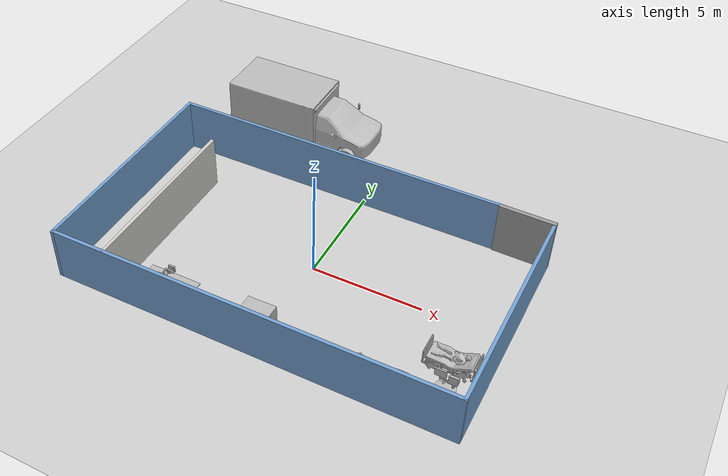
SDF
<sdf version="1.7">
 <world name="default">
  <light name="sun" type="directional">
   <pose>0 0 10 0 -0 0</pose>
   <diffuse>0.8 0.8 0.8 1</diffuse>
   <specular>0.2 0.2 0.2 1</specular>
   <attenuation>
    <range>1000</range>
    <constant>0.9</constant>
    <linear>0.01</linear>
    <quadratic>0.001</quadratic>
   </attenuation>
   <direction>-0.5 0.1 -0.9</direction>
   <spot><inner_angle>0</inner_angle><outer_angle>0</outer_angle><falloff>0</falloff></spot>
  </light>
  <model name="ground_plane">
   <static>1</static>
   <link name="link">
    <collision name="collision">
     <geometry><plane><normal>0 0 1</normal><size>100 100</size></plane></geometry>
     <surface><friction><ode><mu>100</mu><mu2>50</mu2></ode></friction></surface>
    </collision>
    <visual name="visual">
     <cast_shadows>0</cast_shadows>
     <geometry><plane><normal>0 0 1</normal><size>100 100</size></plane></geometry>
     <material>
      <script><uri>file://media/materials/scripts/gazebo.material</uri><name>Gazebo/Grey</name></script>
     </material>
    </visual>
   </link>
  </model>
  <gravity>0 0 -9.8</gravity>
  <magnetic_field>6e-06 2.3e-05 -4.2e-05</magnetic_field>
  <atmosphere type="adiabatic"/>
  <physics type="ode">
   <max_step_size>0.001</max_step_size>
   <real_time_factor>1</real_time_factor>
   <real_time_update_rate>1000</real_time_update_rate>
  </physics>
  <scene><ambient>0.4 0.4 0.4 1</ambient><background>0.7 0.7 0.7 1</background><shadows>1</shadows></scene>
  <spherical_coordinates>
   <surface_model>EARTH_WGS84</surface_model>
   <latitude_deg>0</latitude_deg>
   <longitude_deg>0</longitude_deg>
   <elevation>0</elevation>
   <heading_deg>0</heading_deg>
  </spherical_coordinates>
  <model name="simple_hospital">
   <pose>-0.2635 -0.23498 0 0 -0 3.14159</pose>
   <link name="Door_0">
    <collision name="Door_0_Collision">
     <geometry><box><size>2.495 0.2 2.5</size></box></geometry>
     <pose>0 0 1.25 0 -0 0</pose>
    </collision>
    <visual name="Door_0_Visual">
     <pose>0 0 1.25 0 -0 0</pose>
     <geometry><box><size>2.495 0.2 2.5</size></box></geometry>
     <material>
      <script><uri>file://media/materials/scripts/gazebo.material</uri><name>Gazebo/Grey</name></script>
     </material>
    </visual>
    <pose>-7.75347 -5.00776 0 0 -0 3.12592</pose>
   </link>
   <link name="Wall_3">
    <collision name="Wall_3_Collision">
     <geometry><box><size>10 0.15 2.5</size></box></geometry>
     <pose>0 0 1.25 0 -0 0</pose>
    </collision>
    <visual name="Wall_3_Visual">
     <pose>0 0 1.25 0 -0 0</pose>
     <geometry><box><size>10 0.15 2.5</size></box></geometry>
     <material>
      <script><uri>file://media/materials/scripts/gazebo.material</uri><name>Gazebo/Grey</name></script>
      <ambient>0.447059 0.623529 0.811765 1</ambient>
     </material>
     <meta><layer>0</layer></meta>
    </visual>
    <pose>-8.925 0.125 0 0 -0 -1.5708</pose>
   </link>
   <link name="Wall_5">
    <collision name="Wall_5_Collision">
     <geometry><box><size>18 0.15 2.5</size></box></geometry>
     <pose>0 0 1.25 0 -0 0</pose>
    </collision>
    <visual name="Wall_5_Visual">
     <pose>0 0 1.25 0 -0 0</pose>
     <geometry><box><size>18 0.15 2.5</size></box></geometry>
     <material>
      <script><uri>file://media/materials/scripts/gazebo.material</uri><name>Gazebo/Grey</name></script>
      <ambient>0.447059 0.623529 0.811765 1</ambient>
     </material>
     <meta><layer>0</layer></meta>
    </visual>
    <pose>-0 5.05 0 0 -0 0</pose>
   </link>
   <link name="Wall_6">
    <collision name="Wall_6_Collision">
     <geometry><box><size>10.25 0.15 2.5</size></box></geometry>
     <pose>0 0 1.25 0 -0 0</pose>
    </collision>
    <visual name="Wall_6_Visual">
     <pose>0 0 1.25 0 -0 0</pose>
     <geometry><box><size>10.25 0.15 2.5</size></box></geometry>
     <material>
      <script><uri>file://media/materials/scripts/gazebo.material</uri><name>Gazebo/Grey</name></script>
      <ambient>0.447059 0.623529 0.811765 1</ambient>
     </material>
     <meta><layer>0</layer></meta>
    </visual>
    <pose>8.925 -0 0 0 -0 -1.5708</pose>
   </link>
   <link name="Wall_7">
    <collision name="Wall_7_Collision">
     <geometry><box><size>15.5 0.15 2.5</size></box></geometry>
     <pose>0 0 1.25 0 -0 0</pose>
    </collision>
    <visual name="Wall_7_Visual">
     <pose>0 0 1.25 0 -0 0</pose>
     <geometry><box><size>15.5 0.15 2.5</size></box></geometry>
     <material>
      <script><uri>file://media/materials/scripts/gazebo.material</uri><name>Gazebo/Grey</name></script>
      <ambient>0.447059 0.623529 0.811765 1</ambient>
     </material>
     <meta><layer>0</layer></meta>
    </visual>
    <pose>1.25 -5.05 0 0 -0 3.14159</pose>
   </link>
   <link name="Wall_9">
    <collision name="Wall_9_Collision">
     <geometry><box><size>8.25 0.15 2.5</size></box></geometry>
     <pose>0 0 1.25 0 -0 0</pose>
    </collision>
    <visual name="Wall_9_Visual">
     <pose>0 0 1.25 0 -0 0</pose>
     <geometry><box><size>8.25 0.15 2.5</size></box></geometry>
     <material>
      <script><uri>file://media/materials/scripts/gazebo.material</uri><name>Gazebo/CeilingTiled</name></script>
      <ambient>1 1 1 1</ambient>
     </material>
     <meta><layer>0</layer></meta>
    </visual>
    <pose>6.43971 0.976124 0 0 -0 -1.5708</pose>
   </link>
   <static>1</static>
  </model>
  <model name="AnesthesiaMachine">
   <static>1</static>
   <link name="body">
    <visual name="visual">
     <geometry><mesh><uri>model://AnesthesiaMachine/meshes/AnesthesiaMachine.obj</uri></mesh></geometry>
    </visual>
    <collision name="collision">
     <geometry><mesh><uri>model://AnesthesiaMachine/meshes/AnesthesiaMachine_Col.obj</uri></mesh></geometry>
    </collision>
   </link>
   <pose>7.5908 -4.25426 0 0 -0 0</pose>
  </model>
  <model name="BedsideTable">
   <link name="body">
    <pose>0 0 0 0 0 -1.5708</pose>
    <visual name="visual">
     <geometry><mesh><uri>model://BedsideTable/meshes/BedsideTable.obj</uri></mesh></geometry>
    </visual>
    <collision name="collision">
     <geometry><mesh><uri>model://BedsideTable/meshes/BedsideTable_Col.obj</uri></mesh></geometry>
    </collision>
    <inertial>
     <inertia><ixx>1</ixx><ixy>0</ixy><ixz>0</ixz><iyy>1</iyy><iyz>0</iyz><izz>1</izz></inertia>
     <mass>1</mass>
    </inertial>
   </link>
   <pose>5.83891 -4.19778 0.00018 0 -0 0</pose>
  </model>
  <model name="InstrumentCart1">
   <static>1</static>
   <link name="body">
    <visual name="visual">
     <geometry><mesh><uri>model://InstrumentCart1/meshes/InstrumentCart1.obj</uri></mesh></geometry>
    </visual>
    <collision name="collision">
     <geometry><mesh><uri>model://InstrumentCart1/meshes/InstrumentCart1.obj</uri></mesh></geometry>
    </collision>
   </link>
   <pose>4.17335 -4.34252 0 0 -0 0</pose>
  </model>
  <model name="XRayMachine">
   <static>1</static>
   <link name="body">
    <visual name="visual">
     <geometry><mesh><uri>model://XRayMachine/meshes/XRayMachine.obj</uri></mesh></geometry>
    </visual>
    <collision name="collision">
     <geometry><mesh><uri>model://XRayMachine/meshes/XRayMachine_Col.obj</uri></mesh></geometry>
    </collision>
   </link>
   <pose>-4.46695 -3.86227 0 0 -0 -3.14048</pose>
  </model>
  <model name="StorageRackCovered">
   <link name="link">
    <visual name="visual">
     <geometry><mesh><uri>model://StorageRackCovered/meshes/StorageRackCovered.obj</uri></mesh></geometry>
    </visual>
    <collision name="collision">
     <geometry><mesh><uri>model://StorageRackCovered/meshes/StorageRackCovered.obj</uri></mesh></geometry>
    </collision>
    <inertial>
     <inertia><ixx>1</ixx><ixy>0</ixy><ixz>0</ixz><iyy>1</iyy><iyz>0</iyz><izz>1</izz></inertia>
     <mass>1</mass>
    </inertial>
   </link>
   <pose>-0.110114 -4.35625 -1e-06 0 1e-06 0</pose>
  </model>
  <model name="ElderLadyPatient">
   <link name="body">
    <visual name="visual">
     <geometry><mesh><uri>model://ElderLadyPatient/meshes/ElderFemale.obj</uri></mesh></geometry>
    </visual>
    <collision name="collision">
     <geometry><mesh><uri>model://ElderLadyPatient/meshes/ElderFemale.obj</uri></mesh></geometry>
    </collision>
    <inertial>
     <inertia><ixx>1</ixx><ixy>0</ixy><ixz>0</ixz><iyy>1</iyy><iyz>0</iyz><izz>1</izz></inertia>
     <mass>1</mass>
    </inertial>
   </link>
   <pose>7.25139 -2.25289 0.001656 -3e-06 4e-06 -3.14048</pose>
  </model>
  <model name="ambulance">
   <static>1</static>
   <link name="link">
    <collision name="collision">
     <geometry>
      <mesh><scale>0.0254 0.0254 0.0254</scale><uri>model://ambulance/meshes/ambulance.obj</uri></mesh>
     </geometry>
    </collision>
    <visual name="visual">
     <geometry>
      <mesh><scale>0.0254 0.0254 0.0254</scale><uri>model://ambulance/meshes/ambulance.obj</uri></mesh>
     </geometry>
    </visual>
   </link>
   <pose>-4.76236 7.99026 0 0 -0 1.57</pose>
  </model>
 </world>
</sdf>
